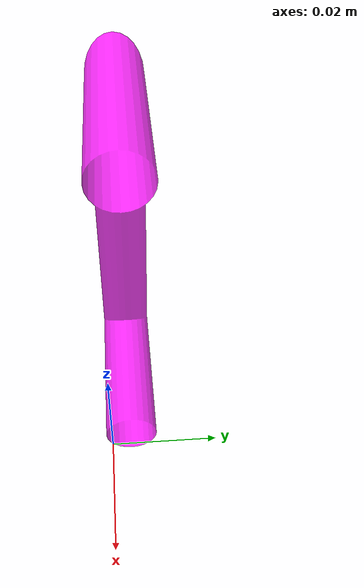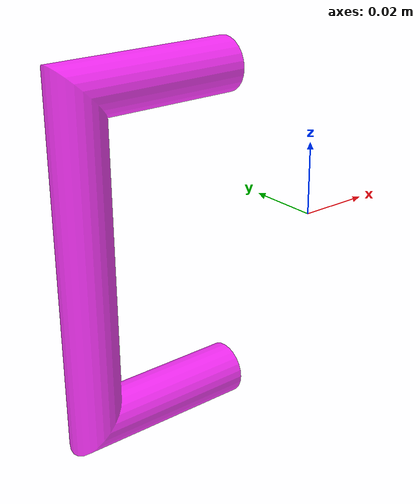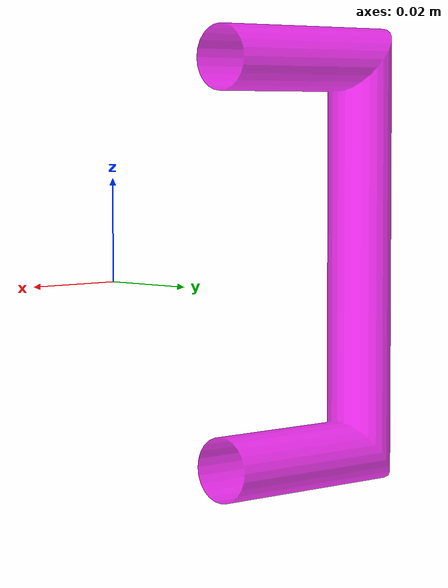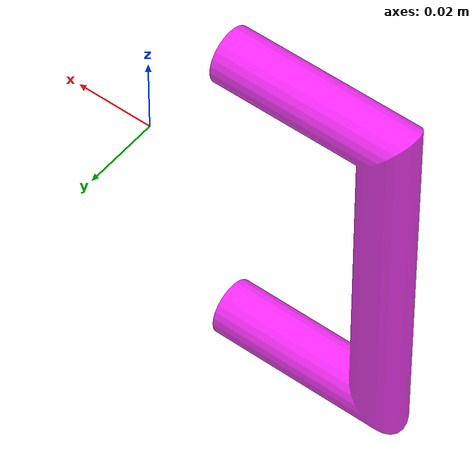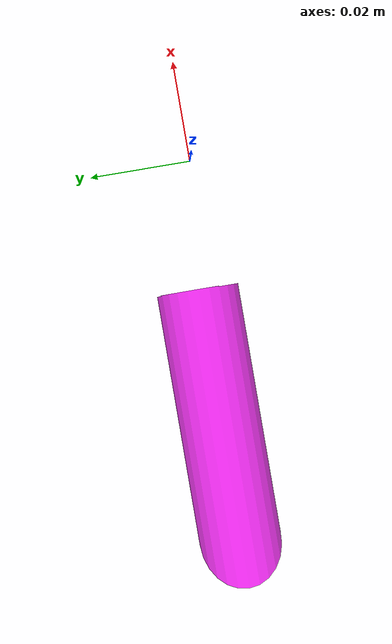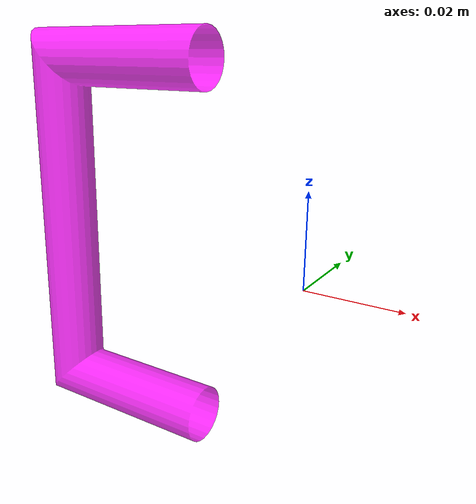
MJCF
<mujoco model="bottom_watertight_tiny">
  <default>
    <default group="2" type="mesh" contype="0" conaffinity="0">
      <geom group="2" type="mesh" contype="0" conaffinity="0"/>
    </default>
    <default group="3" type="mesh">
      <geom group="3" type="mesh"/>
    </default>
  </default>
  <asset>
    <mesh file="bottom_watertight_tiny.obj"/>
    <mesh file="bottom_watertight_tiny_collision_0.obj"/>
    <mesh file="bottom_watertight_tiny_collision_1.obj"/>
    <mesh file="bottom_watertight_tiny_collision_2.obj"/>
    <mesh file="bottom_watertight_tiny_collision_3.obj"/>
    <mesh file="bottom_watertight_tiny_collision_4.obj"/>
    <mesh file="bottom_watertight_tiny_collision_5.obj"/>
    <mesh file="bottom_watertight_tiny_collision_6.obj"/>
    <mesh file="bottom_watertight_tiny_collision_7.obj"/>
    <mesh file="bottom_watertight_tiny_collision_8.obj"/>
    <mesh file="bottom_watertight_tiny_collision_9.obj"/>
    <mesh file="bottom_watertight_tiny_collision_10.obj"/>
    <mesh file="bottom_watertight_tiny_collision_11.obj"/>
    <mesh file="bottom_watertight_tiny_collision_12.obj"/>
    <mesh file="bottom_watertight_tiny_collision_13.obj"/>
    <mesh file="bottom_watertight_tiny_collision_14.obj"/>
    <mesh file="bottom_watertight_tiny_collision_15.obj"/>
    <mesh file="bottom_watertight_tiny_collision_16.obj"/>
    <mesh file="bottom_watertight_tiny_collision_17.obj"/>
    <mesh file="bottom_watertight_tiny_collision_18.obj"/>
    <mesh file="bottom_watertight_tiny_collision_19.obj"/>
    <mesh file="bottom_watertight_tiny_collision_20.obj"/>
    <mesh file="bottom_watertight_tiny_collision_21.obj"/>
    <mesh file="bottom_watertight_tiny_collision_22.obj"/>
    <mesh file="bottom_watertight_tiny_collision_23.obj"/>
    <mesh file="bottom_watertight_tiny_collision_24.obj"/>
    <mesh file="bottom_watertight_tiny_collision_25.obj"/>
    <mesh file="bottom_watertight_tiny_collision_26.obj"/>
    <mesh file="bottom_watertight_tiny_collision_27.obj"/>
    <mesh file="bottom_watertight_tiny_collision_28.obj"/>
    <mesh file="bottom_watertight_tiny_collision_29.obj"/>
    <mesh file="bottom_watertight_tiny_collision_30.obj"/>
    <mesh file="bottom_watertight_tiny_collision_31.obj"/>
    <mesh file="bottom_watertight_tiny_collision_32.obj"/>
    <mesh file="bottom_watertight_tiny_collision_33.obj"/>
  </asset>
  <worldbody>
    <body name="bottom_watertight_tiny">
      <freejoint/>
      <geom mesh="bottom_watertight_tiny" group="2" type="mesh" rgba="1 0 1 0.8" contype="0" conaffinity="0"/>
      <geom mesh="bottom_watertight_tiny_collision_0" rgba="0.5863560367145646 0.8555536879842435 0.0633954366468028 1" group="3" type="mesh"/>
      <geom mesh="bottom_watertight_tiny_collision_1" rgba="0.455347986868442 0.8044326765668621 0.3466124854345708 1" group="3" type="mesh"/>
      <geom mesh="bottom_watertight_tiny_collision_2" rgba="0.5376563477223059 0.36525385916417863 0.5596753494512697 1" group="3" type="mesh"/>
      <geom mesh="bottom_watertight_tiny_collision_3" rgba="0.3504727070987115 0.08388809239735318 0.7275028530447429 1" group="3" type="mesh"/>
      <geom mesh="bottom_watertight_tiny_collision_4" rgba="0.37608744001197913 0.8262495281111194 0.3320383407650779 1" group="3" type="mesh"/>
      <geom mesh="bottom_watertight_tiny_collision_5" rgba="0.10676097897684689 0.5669565415721267 0.5153892940768947 1" group="3" type="mesh"/>
      <geom mesh="bottom_watertight_tiny_collision_6" rgba="0.8406582189760492 0.6750009217400927 0.7512848054713015 1" group="3" type="mesh"/>
      <geom mesh="bottom_watertight_tiny_collision_7" rgba="0.06739891120266384 0.4391459106852985 0.5582511180487594 1" group="3" type="mesh"/>
      <geom mesh="bottom_watertight_tiny_collision_8" rgba="0.20634242102198863 0.8357574666129035 0.9088965000012885 1" group="3" type="mesh"/>
      <geom mesh="bottom_watertight_tiny_collision_9" rgba="0.7095692922381079 0.4598176347320331 0.7924689191080077 1" group="3" type="mesh"/>
      <geom mesh="bottom_watertight_tiny_collision_10" rgba="0.9528296473994605 0.5064110598526791 0.9472035812743419 1" group="3" type="mesh"/>
      <geom mesh="bottom_watertight_tiny_collision_11" rgba="0.36419687132308687 0.6435875719572597 0.786774596124691 1" group="3" type="mesh"/>
      <geom mesh="bottom_watertight_tiny_collision_12" rgba="0.022776076804194245 0.3020378534144116 0.1168102339910071 1" group="3" type="mesh"/>
      <geom mesh="bottom_watertight_tiny_collision_13" rgba="0.6114590175156601 0.19063878546487267 0.7558044958670235 1" group="3" type="mesh"/>
      <geom mesh="bottom_watertight_tiny_collision_14" rgba="0.7884006569492666 0.7953628342990464 0.6081861787546002 1" group="3" type="mesh"/>
      <geom mesh="bottom_watertight_tiny_collision_15" rgba="0.778904864715041 0.3026949634207824 0.5277690749075248 1" group="3" type="mesh"/>
      <geom mesh="bottom_watertight_tiny_collision_16" rgba="0.1997482395170307 0.23385928806768097 0.3973905547855572 1" group="3" type="mesh"/>
      <geom mesh="bottom_watertight_tiny_collision_17" rgba="0.3923665520494338 0.1348730084431834 0.41846743781524043 1" group="3" type="mesh"/>
      <geom mesh="bottom_watertight_tiny_collision_18" rgba="0.32805800067173485 0.009468014727878504 0.34329005406963753 1" group="3" type="mesh"/>
      <geom mesh="bottom_watertight_tiny_collision_19" rgba="0.2956618426032487 0.4405158707828565 0.9054665943503664 1" group="3" type="mesh"/>
      <geom mesh="bottom_watertight_tiny_collision_20" rgba="0.9027110977898971 0.3041602586303094 0.21374325172946473 1" group="3" type="mesh"/>
      <geom mesh="bottom_watertight_tiny_collision_21" rgba="0.9969605335344252 0.6847246010374549 0.44140894911486994 1" group="3" type="mesh"/>
      <geom mesh="bottom_watertight_tiny_collision_22" rgba="0.6088085247100444 0.45326718023703616 0.007687958274915974 1" group="3" type="mesh"/>
      <geom mesh="bottom_watertight_tiny_collision_23" rgba="0.3609347517823972 0.4004171310172836 0.29946179599342604 1" group="3" type="mesh"/>
      <geom mesh="bottom_watertight_tiny_collision_24" rgba="0.08597299595604835 0.31795016954999034 0.31170903025617624 1" group="3" type="mesh"/>
      <geom mesh="bottom_watertight_tiny_collision_25" rgba="0.29473316063361354 0.015857478178115003 0.044725677993798674 1" group="3" type="mesh"/>
      <geom mesh="bottom_watertight_tiny_collision_26" rgba="0.8029944455872108 0.9667979937828599 0.1161024574389431 1" group="3" type="mesh"/>
      <geom mesh="bottom_watertight_tiny_collision_27" rgba="0.3294229958398235 0.17010584289740704 0.10195752194440333 1" group="3" type="mesh"/>
      <geom mesh="bottom_watertight_tiny_collision_28" rgba="0.14913741377424072 0.21801655449429347 0.7705254648062375 1" group="3" type="mesh"/>
      <geom mesh="bottom_watertight_tiny_collision_29" rgba="0.9432535556268609 0.18633267519952346 0.6217897917495518 1" group="3" type="mesh"/>
      <geom mesh="bottom_watertight_tiny_collision_30" rgba="0.8792942472078066 0.9019599188467247 0.7971197874128807 1" group="3" type="mesh"/>
      <geom mesh="bottom_watertight_tiny_collision_31" rgba="0.297378214774762 0.8978911290727053 0.5237999494350041 1" group="3" type="mesh"/>
      <geom mesh="bottom_watertight_tiny_collision_32" rgba="0.5951593615070208 0.29008336953588265 0.07846296332360869 1" group="3" type="mesh"/>
      <geom mesh="bottom_watertight_tiny_collision_33" rgba="0.5860094018442469 0.3498131030902497 0.7710977349498933 1" group="3" type="mesh"/>
    </body>
  </worldbody>
</mujoco>
